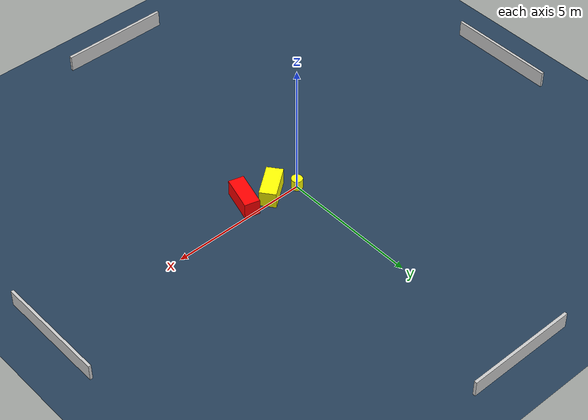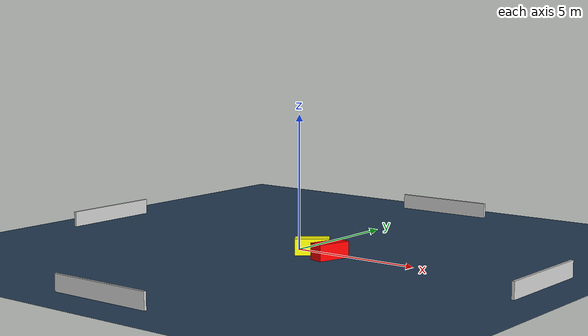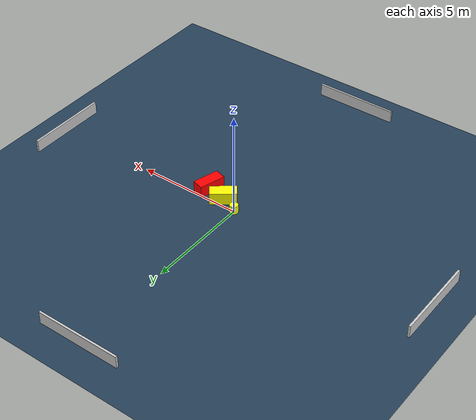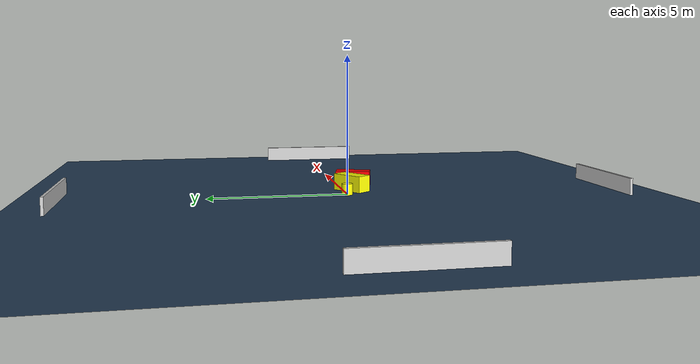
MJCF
<?xml version="1.0" ?>
<mujoco model="generated_environment">
  <option timestep="0.01" integrator="RK4" cone="elliptic"/>
  <default>
    <geom density="1"/>
  </default>
  <asset>
    <texture builtin="gradient" height="3072" name="skybox" rgb1="0.3 0.5 0.7" rgb2="0 0 0" type="skybox" width="512"/>
    <texture builtin="checker" height="300" name="groundplane" rgb1="0.2 0.3 0.4" rgb2="0.1 0.2 0.3" type="2d" width="300"/>
    <material name="groundplane" reflectance="0.2" texrepeat="5 5" texture="groundplane"/>
  </asset>
  <worldbody>
    <light dir="0 0 -1" directional="true" pos="0 0 1.5"/>
    <geom condim="3" friction="0.5 0.005 0.001" material="groundplane" name="floor" pos="0 0 0" size="0 0 0.05" type="plane"/>
    <body name="walls">
      <geom name="wall_1" condim="4" pos="-10.0 0.0 0.3" rgba="0.800000011920929 0.800000011920929 0.800000011920929 1.0" size="0.05 2.0 0.3" type="box"/>
      <geom name="wall_2" condim="4" pos="10.0 0.0 0.3" rgba="0.800000011920929 0.800000011920929 0.800000011920929 1.0" size="0.05 2.0 0.3" type="box"/>
      <geom name="wall_3" condim="4" pos="0.0 -10.0 0.3" rgba="0.800000011920929 0.800000011920929 0.800000011920929 1.0" size="2.0 0.05 0.3" type="box"/>
      <geom name="wall_4" condim="4" pos="0.0 10.0 0.3" rgba="0.800000011920929 0.800000011920929 0.800000011920929 1.0" size="2.0 0.05 0.3" type="box"/>
    </body>
    <body name="robot">
      <joint name="joint_x" type="slide" pos="0 0 0" axis="1 0 0"/>
      <joint name="joint_y" type="slide" pos="0 0 0" axis="0 1 0"/>
      <geom name="robot" type="cylinder" pos="0.0 0.0 0.2" size="0.2 0.2 0.0" mass="5.0" friction="1.0 0.005 0.0001" condim="4" rgba="1.0 1.0 0.0 1.0"/>
    </body>
    <body name="obstacle_1_movable">
      <geom name="obstacle_1_movable" condim="4" pos="0.8456897048036899 -0.3328617513699619 0.3" euler="0 0 127.23832090034429" friction="0.0 0.005 0.001" rgba="1.0 1.0 0.0 1.0" size="0.29603370609422136 0.6266118418411148 0.3" type="box" mass="0.1"/>
      <joint type="free"/>
    </body>
    <body name="obstacle_2_static">
      <geom name="obstacle_2_static" condim="4" pos="1.8268607222467115 -0.5740747949181693 0.3" euler="0 0 74.2573301736054" friction="0.0 0.005 0.001" rgba="1.0 0.0 0.0 1.0" size="0.6414491455335944 0.2749722343127725 0.3" type="box"/>
    </body>
  </worldbody>
  <actuator>
    <motor name="actuator_x" joint="joint_x" gear="1" ctrlrange="-1 1"/>
    <motor name="actuator_y" joint="joint_y" gear="1" ctrlrange="-1 1"/>
  </actuator>
</mujoco>
